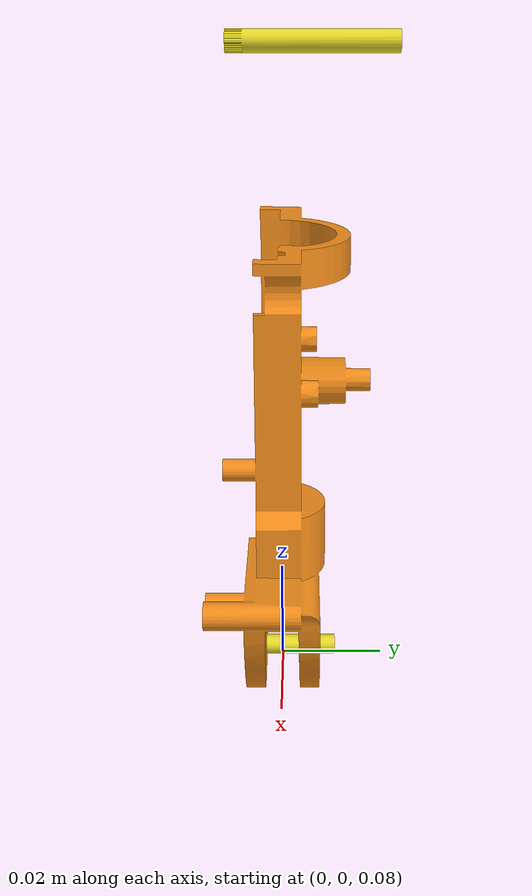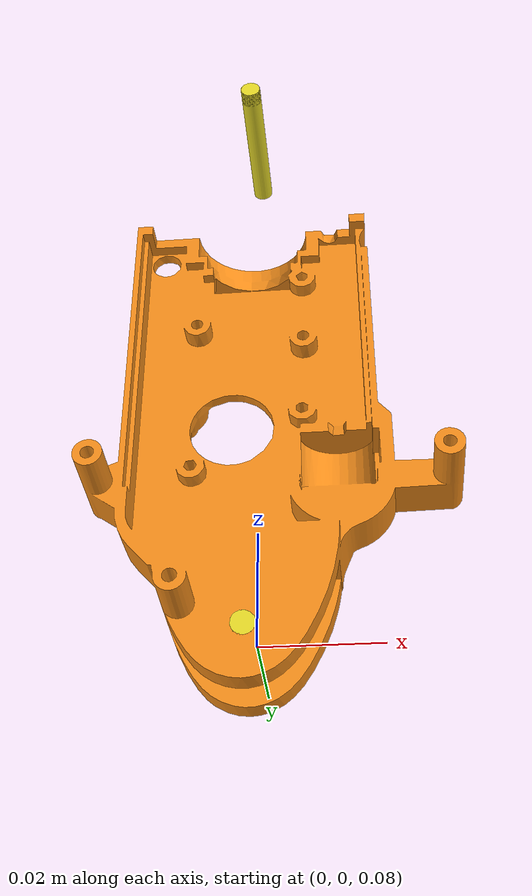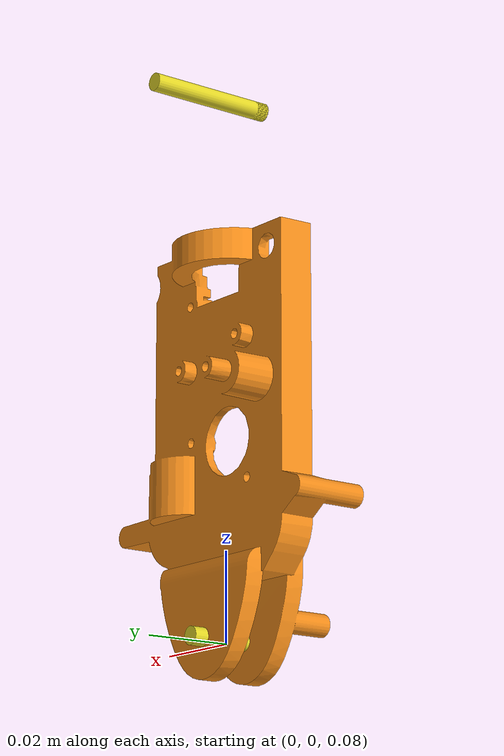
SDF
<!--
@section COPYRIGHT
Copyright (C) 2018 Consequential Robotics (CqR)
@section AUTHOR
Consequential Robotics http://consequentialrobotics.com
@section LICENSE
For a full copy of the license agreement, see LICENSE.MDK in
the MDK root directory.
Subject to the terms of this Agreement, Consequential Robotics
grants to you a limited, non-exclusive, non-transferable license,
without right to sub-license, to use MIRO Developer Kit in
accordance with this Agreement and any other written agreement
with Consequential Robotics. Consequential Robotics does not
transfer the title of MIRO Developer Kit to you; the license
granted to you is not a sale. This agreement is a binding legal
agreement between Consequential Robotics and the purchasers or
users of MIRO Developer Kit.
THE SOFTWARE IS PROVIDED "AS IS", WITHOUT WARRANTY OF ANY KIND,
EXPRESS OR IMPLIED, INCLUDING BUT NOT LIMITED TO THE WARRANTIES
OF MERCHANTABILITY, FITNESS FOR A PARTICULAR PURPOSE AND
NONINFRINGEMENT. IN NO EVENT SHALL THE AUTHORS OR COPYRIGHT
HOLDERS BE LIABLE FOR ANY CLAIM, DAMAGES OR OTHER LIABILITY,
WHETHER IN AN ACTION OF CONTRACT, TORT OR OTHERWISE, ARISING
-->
<?xml version="1.0"?>
<sdf version="1.5">
  <model name="miro_neck">
    <link name="neck">
      <inertial>
        <pose>-0.002 0 0.141 0 0 0</pose>
        <mass>0.075398</mass>
        <inertia>
          <ixx>0.00009802</ixx>
          <ixy>0.0</ixy>
          <ixz>0.0</ixz>
          <iyy>0.00009802</iyy>
          <iyz>0.0</iyz>
          <izz>0.00001508</izz>
        </inertia>
      </inertial>
      <visual name="visual_neck_member_main">
        <pose>0 0 0 0 0 0</pose>
        <geometry>
          <mesh>
            <uri>model://miro_model/meshes/neck_member_main.dae</uri>
          </mesh>
        </geometry>
        <material>
          <script>
            <uri>file://media/materials/scripts/gazebo.material</uri>
            <name>Gazebo/Orange</name>
          </script>
        </material>
      </visual>
      <visual name="visual_neck_mount_upper_pin">
        <pose>0 0 0 0 0 0</pose>
        <geometry>
          <mesh>
            <uri>model://miro_model/meshes/neck_mount_upper_pin.dae</uri>
          </mesh>
        </geometry>
        <material>
          <script>
            <uri>file://media/materials/scripts/gazebo.material</uri>
            <name>Gazebo/YellowGlow</name>
          </script>
        </material>
      </visual>
      <visual name="visual_neck_mount_lower_pin">
        <pose>0 0 0 0 0 0</pose>
        <geometry>
          <mesh>
            <uri>model://miro_model/meshes/neck_mount_lower_pin.dae</uri>
          </mesh>
        </geometry>
        <material>
          <script>
            <uri>file://media/materials/scripts/gazebo.material</uri>
            <name>Gazebo/YellowGlow</name>
          </script>
        </material>
      </visual>
    </link>
  </model>
</sdf>
